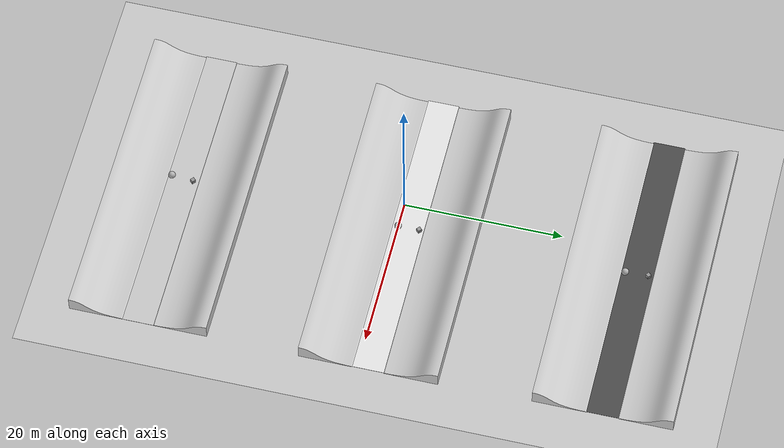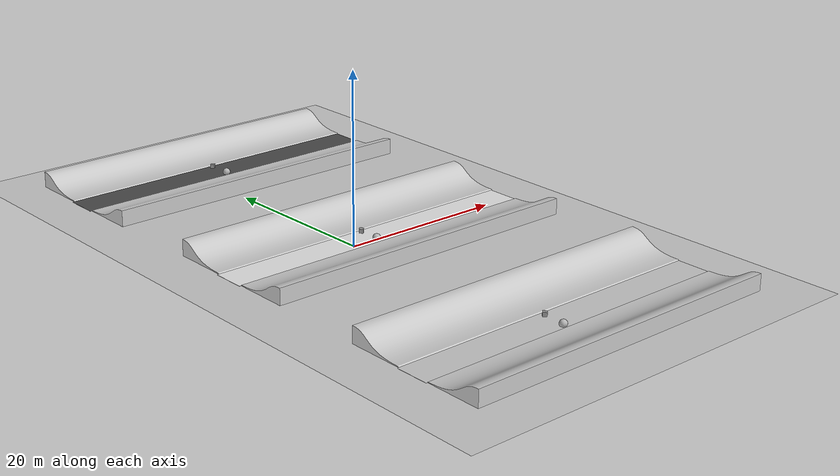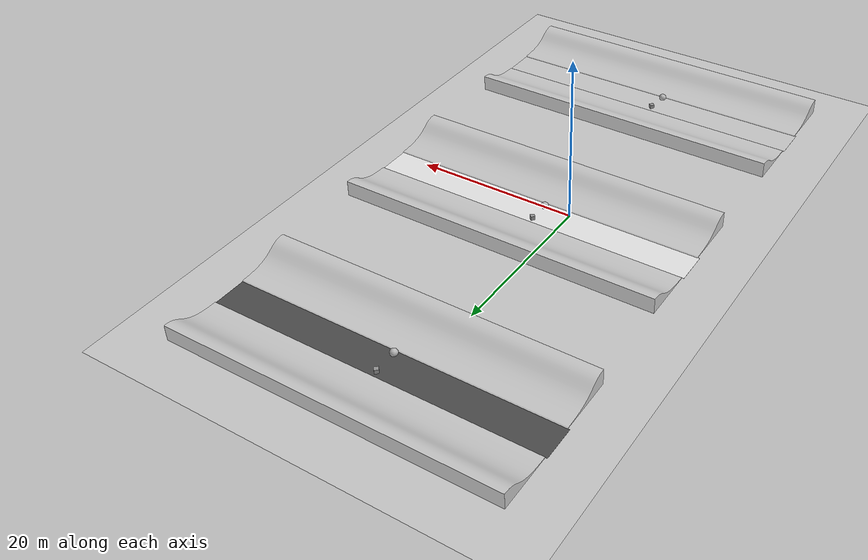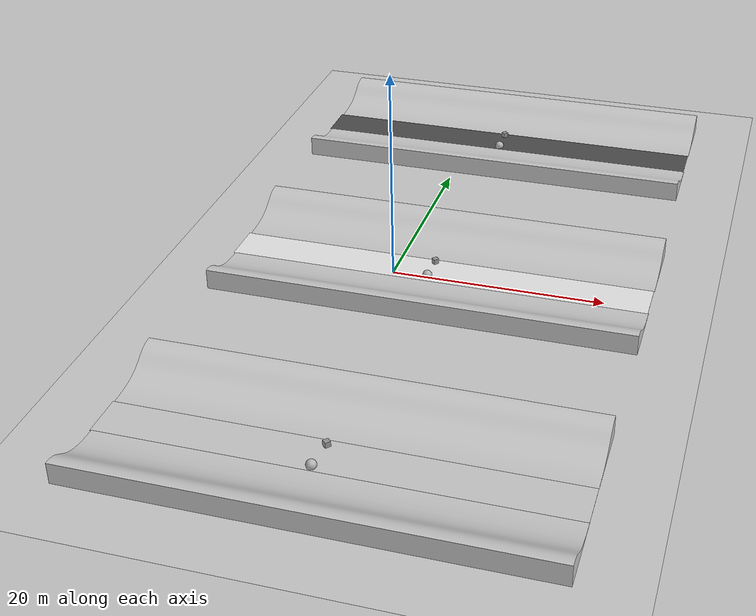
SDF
<sdf version="1.6">
 <world name="default">
  <light name="sun" type="directional">
   <pose>0 0 10 0 -0 0</pose>
   <diffuse>0.8 0.8 0.8 1</diffuse>
   <specular>0.2 0.2 0.2 1</specular>
   <attenuation>
    <range>1000</range>
    <constant>0.9</constant>
    <linear>0.01</linear>
    <quadratic>0.001</quadratic>
   </attenuation>
   <direction>-0.5 0.1 -0.9</direction>
  </light>
  <model name="ground_plane">
   <static>1</static>
   <link name="link">
    <collision name="collision">
     <geometry><plane><normal>0 0 1</normal><size>100 100</size></plane></geometry>
     <surface>
      <contact><collide_bitmask>65535</collide_bitmask></contact>
      <friction><ode><mu>100</mu><mu2>50</mu2></ode></friction>
     </surface>
    </collision>
    <visual name="visual">
     <cast_shadows>0</cast_shadows>
     <geometry><plane><normal>0 0 1</normal><size>100 100</size></plane></geometry>
     <material>
      <script><uri>file://media/materials/scripts/gazebo.material</uri><name>Gazebo/Grey</name></script>
     </material>
    </visual>
   </link>
  </model>
  <gravity>0 0 -9.8</gravity>
  <magnetic_field>6e-06 2.3e-05 -4.2e-05</magnetic_field>
  <atmosphere type="adiabatic"/>
  <physics name="default_physics" default="0" type="ode">
   <max_step_size>0.001</max_step_size>
   <real_time_factor>1</real_time_factor>
   <real_time_update_rate>1000</real_time_update_rate>
  </physics>
  <scene><ambient>0.4 0.4 0.4 1</ambient><background>0.7 0.7 0.7 1</background><shadows>1</shadows></scene>
  <spherical_coordinates>
   <surface_model>EARTH_WGS84</surface_model>
   <latitude_deg>0</latitude_deg>
   <longitude_deg>0</longitude_deg>
   <elevation>0</elevation>
   <heading_deg>0</heading_deg>
  </spherical_coordinates>
  <model name="road_dashed_two_white">
   <static>1</static>
   <link name="link">
    <collision name="collision"><geometry><box><size>40 4 0.02</size></box></geometry></collision>
    <visual name="visual">
     <cast_shadows>0</cast_shadows>
     <geometry><box><size>40 4 0.02</size></box></geometry>
     <material>
      <script>
       <uri>model://road_dashed_two_white/materials/scripts</uri>
       <uri>model://road_dashed_two_white/materials/textures</uri>
       <name>DashedTwoWhite</name>
      </script>
     </material>
    </visual>
   </link>
   <pose>4.06806 1.28061 0 0 -0 0</pose>
  </model>
  <model name="road_plain_white">
   <static>1</static>
   <link name="link">
    <collision name="collision"><geometry><box><size>40 4 0.02</size></box></geometry></collision>
    <visual name="visual">
     <cast_shadows>0</cast_shadows>
     <geometry><box><size>40 4 0.02</size></box></geometry>
     <material>
      <ambient>0.8 0.8 0.8 1</ambient>
      <diffuse>0.8 0.8 0.8 1</diffuse>
      <specular>0.1 0.1 0.1 1</specular>
      <emissive>0 0 0 0</emissive>
     </material>
    </visual>
   </link>
   <pose>4.05101 -27.5098 0 0 -0 0</pose>
  </model>
  <model name="road_light_grid">
   <static>1</static>
   <link name="link">
    <collision name="collision"><geometry><box><size>40 4 0.02</size></box></geometry></collision>
    <visual name="visual">
     <cast_shadows>0</cast_shadows>
     <geometry><box><size>40 4 0.02</size></box></geometry>
     <material>
      <script>
       <uri>model://road_light_grid/materials/scripts</uri>
       <uri>model://road_light_grid/materials/textures</uri>
       <name>RoadLightGrid</name>
      </script>
     </material>
    </visual>
   </link>
   <pose>3.68524 30.117 0 0 -0 0</pose>
  </model>
  <model name="unit_box_clone_2">
   <pose>3.32296 28.5889 0.26 0 -0 3e-06</pose>
   <link name="link">
    <inertial>
     <mass>1</mass>
     <inertia>
      <ixx>0.166667</ixx>
      <ixy>0</ixy>
      <ixz>0</ixz>
      <iyy>0.166667</iyy>
      <iyz>0</iyz>
      <izz>0.166667</izz>
     </inertia>
    </inertial>
    <collision name="collision"><geometry><box><size>0.5 0.5 0.5</size></box></geometry></collision>
    <visual name="visual">
     <geometry><box><size>0.5 0.5 0.5</size></box></geometry>
     <material>
      <script><name>Gazebo/Grey</name><uri>file://media/materials/scripts/gazebo.material</uri></script>
     </material>
    </visual>
    <visual name="visual_sphere_cue">
     <geometry><sphere><radius>0.45</radius></sphere></geometry>
     <plugin name="blink" filename="libBlinkVisualPlugin.so">
      <color_a>0 1 0 0.15</color_a>
      <color_b>0 1 0 0.15</color_b>
      <period>2</period>
      <use_wall_time>true</use_wall_time>
     </plugin>
     <material>
      <script><uri>file://media/materials/scripts/gazebo.material</uri><name>__default__</name></script>
     </material>
    </visual>
   </link>
  </model>
  <model name="unit_box_clone_3">
   <pose>3.28512 0.018814 0.26 0 -0 3e-06</pose>
   <link name="link">
    <inertial>
     <mass>1</mass>
     <inertia>
      <ixx>0.166667</ixx>
      <ixy>0</ixy>
      <ixz>0</ixz>
      <iyy>0.166667</iyy>
      <iyz>0</iyz>
      <izz>0.166667</izz>
     </inertia>
    </inertial>
    <collision name="collision"><geometry><box><size>0.5 0.5 0.5</size></box></geometry></collision>
    <visual name="visual">
     <geometry><box><size>0.5 0.5 0.5</size></box></geometry>
     <material>
      <script><name>Gazebo/Grey</name><uri>file://media/materials/scripts/gazebo.material</uri></script>
     </material>
    </visual>
    <visual name="visual_sphere_cue">
     <geometry><sphere><radius>0.45</radius></sphere></geometry>
     <plugin name="blink" filename="libBlinkVisualPlugin.so">
      <color_a>0 1 0 0.15</color_a>
      <color_b>0 1 0 0.15</color_b>
      <period>2</period>
      <use_wall_time>true</use_wall_time>
     </plugin>
     <material>
      <script><uri>file://media/materials/scripts/gazebo.material</uri><name>__default__</name></script>
     </material>
    </visual>
   </link>
  </model>
  <model name="unit_box_clone_5">
   <pose>2.50651 -29.0049 0.26 0 0 -0.012581</pose>
   <link name="link">
    <inertial>
     <mass>1</mass>
     <inertia>
      <ixx>0.166667</ixx>
      <ixy>0</ixy>
      <ixz>0</ixz>
      <iyy>0.166667</iyy>
      <iyz>0</iyz>
      <izz>0.166667</izz>
     </inertia>
    </inertial>
    <collision name="collision"><geometry><box><size>0.5 0.5 0.5</size></box></geometry></collision>
    <visual name="visual">
     <geometry><box><size>0.5 0.5 0.5</size></box></geometry>
     <material>
      <script><name>Gazebo/Grey</name><uri>file://media/materials/scripts/gazebo.material</uri></script>
     </material>
    </visual>
    <visual name="visual_sphere_cue">
     <geometry><sphere><radius>0.45</radius></sphere></geometry>
     <plugin name="blink" filename="libBlinkVisualPlugin.so">
      <color_a>0 1 0 0.15</color_a>
      <color_b>0 1 0 0.15</color_b>
      <period>2</period>
      <use_wall_time>true</use_wall_time>
     </plugin>
     <material>
      <script><uri>file://media/materials/scripts/gazebo.material</uri><name>__default__</name></script>
     </material>
    </visual>
   </link>
  </model>
  <model name="unit_box_evil">
   <pose>2.76098 -26.2449 0.26 0 0 -0.764275</pose>
   <link name="link">
    <inertial>
     <mass>1</mass>
     <inertia>
      <ixx>0.166667</ixx>
      <ixy>0</ixy>
      <ixz>0</ixz>
      <iyy>0.166667</iyy>
      <iyz>0</iyz>
      <izz>0.166667</izz>
     </inertia>
    </inertial>
    <collision name="collision"><geometry><box><size>0.5 0.5 0.5</size></box></geometry></collision>
    <visual name="visual">
     <geometry><box><size>0.5 0.5 0.5</size></box></geometry>
     <material>
      <script><name>Gazebo/Grey</name><uri>file://media/materials/scripts/gazebo.material</uri></script>
     </material>
    </visual>
   </link>
   <plugin name="model_push" filename="libvisual_cue_plugin.so"/>
  </model>
  <model name="unit_box_evil__2">
   <pose>3.24811 31.4604 0.26 0 0 -0.788595</pose>
   <link name="link">
    <inertial>
     <mass>1</mass>
     <inertia>
      <ixx>0.166667</ixx>
      <ixy>0</ixy>
      <ixz>0</ixz>
      <iyy>0.166667</iyy>
      <iyz>0</iyz>
      <izz>0.166667</izz>
     </inertia>
    </inertial>
    <collision name="collision"><geometry><box><size>0.5 0.5 0.5</size></box></geometry></collision>
    <visual name="visual">
     <geometry><box><size>0.5 0.5 0.5</size></box></geometry>
     <material>
      <script><name>Gazebo/Grey</name><uri>file://media/materials/scripts/gazebo.material</uri></script>
     </material>
    </visual>
   </link>
   <plugin name="model_push" filename="libvisual_cue_plugin.so"/>
  </model>
  <model name="unit_box_evil__3">
   <pose>3.31874 2.68686 0.26 0 0 -0.788596</pose>
   <link name="link">
    <inertial>
     <mass>1</mass>
     <inertia>
      <ixx>0.166667</ixx>
      <ixy>0</ixy>
      <ixz>0</ixz>
      <iyy>0.166667</iyy>
      <iyz>0</iyz>
      <izz>0.166667</izz>
     </inertia>
    </inertial>
    <collision name="collision"><geometry><box><size>0.5 0.5 0.5</size></box></geometry></collision>
    <visual name="visual">
     <geometry><box><size>0.5 0.5 0.5</size></box></geometry>
     <material>
      <script><name>Gazebo/Grey</name><uri>file://media/materials/scripts/gazebo.material</uri></script>
     </material>
    </visual>
   </link>
   <plugin name="model_push" filename="libvisual_cue_plugin.so"/>
  </model>
  <model name="side_slope">
   <static>1</static>
   <link name="slope_1">
    <collision name="collision">
     <geometry><mesh><uri>model://side_slope/meshes/side_slope.dae</uri><scale>18 1.5 1.5</scale></mesh></geometry>
    </collision>
    <visual name="visual">
     <geometry><mesh><uri>model://side_slope/meshes/side_slope.dae</uri><scale>18 1.5 1.5</scale></mesh></geometry>
     <material>
      <ambient>0.7 0.7 0.7 1</ambient>
      <diffuse>0.8 0.8 0.8 1</diffuse>
      <specular>0.1 0.1 0.1 1</specular>
      <emissive>0 0 0 0</emissive>
     </material>
    </visual>
   </link>
   <link name="slope_2">
    <pose>0 10.6 0 0 -0 -3.14159</pose>
    <collision name="collision">
     <geometry><mesh><uri>model://side_slope/meshes/side_slope.dae</uri><scale>18 1.5 1.5</scale></mesh></geometry>
    </collision>
    <visual name="visual">
     <geometry><mesh><uri>model://side_slope/meshes/side_slope.dae</uri><scale>18 1.5 1.5</scale></mesh></geometry>
     <material>
      <ambient>0.7 0.7 0.7 1</ambient>
      <diffuse>0.8 0.8 0.8 1</diffuse>
      <specular>0.1 0.1 0.1 1</specular>
      <emissive>0 0 0 0</emissive>
     </material>
    </visual>
   </link>
   <pose>3.82436 24.8039 0 0 -0 0</pose>
  </model>
  <model name="side_slope_0">
   <static>1</static>
   <link name="slope_1">
    <collision name="collision">
     <geometry><mesh><uri>model://side_slope/meshes/side_slope.dae</uri><scale>18 1.5 1.5</scale></mesh></geometry>
    </collision>
    <visual name="visual">
     <geometry><mesh><uri>model://side_slope/meshes/side_slope.dae</uri><scale>18 1.5 1.5</scale></mesh></geometry>
     <material>
      <ambient>0.7 0.7 0.7 1</ambient>
      <diffuse>0.8 0.8 0.8 1</diffuse>
      <specular>0.1 0.1 0.1 1</specular>
      <emissive>0 0 0 0</emissive>
     </material>
    </visual>
   </link>
   <link name="slope_2">
    <pose>0 10.6 0 0 -0 -3.14159</pose>
    <collision name="collision">
     <geometry><mesh><uri>model://side_slope/meshes/side_slope.dae</uri><scale>18 1.5 1.5</scale></mesh></geometry>
    </collision>
    <visual name="visual">
     <geometry><mesh><uri>model://side_slope/meshes/side_slope.dae</uri><scale>18 1.5 1.5</scale></mesh></geometry>
     <material>
      <ambient>0.7 0.7 0.7 1</ambient>
      <diffuse>0.8 0.8 0.8 1</diffuse>
      <specular>0.1 0.1 0.1 1</specular>
      <emissive>0 0 0 0</emissive>
     </material>
    </visual>
   </link>
   <pose>4.21825 -4.0059 0 0 -0 0</pose>
  </model>
  <model name="side_slope_1">
   <static>1</static>
   <link name="slope_1">
    <collision name="collision">
     <geometry><mesh><uri>model://side_slope/meshes/side_slope.dae</uri><scale>18 1.5 1.5</scale></mesh></geometry>
    </collision>
    <visual name="visual">
     <geometry><mesh><uri>model://side_slope/meshes/side_slope.dae</uri><scale>18 1.5 1.5</scale></mesh></geometry>
     <material>
      <ambient>0.7 0.7 0.7 1</ambient>
      <diffuse>0.8 0.8 0.8 1</diffuse>
      <specular>0.1 0.1 0.1 1</specular>
      <emissive>0 0 0 0</emissive>
     </material>
    </visual>
   </link>
   <link name="slope_2">
    <pose>0 10.6 0 0 -0 -3.14159</pose>
    <collision name="collision">
     <geometry><mesh><uri>model://side_slope/meshes/side_slope.dae</uri><scale>18 1.5 1.5</scale></mesh></geometry>
    </collision>
    <visual name="visual">
     <geometry><mesh><uri>model://side_slope/meshes/side_slope.dae</uri><scale>18 1.5 1.5</scale></mesh></geometry>
     <material>
      <ambient>0.7 0.7 0.7 1</ambient>
      <diffuse>0.8 0.8 0.8 1</diffuse>
      <specular>0.1 0.1 0.1 1</specular>
      <emissive>0 0 0 0</emissive>
     </material>
    </visual>
   </link>
   <pose>4.14526 -32.7831 0 0 -0 0</pose>
  </model>
 </world>
</sdf>
